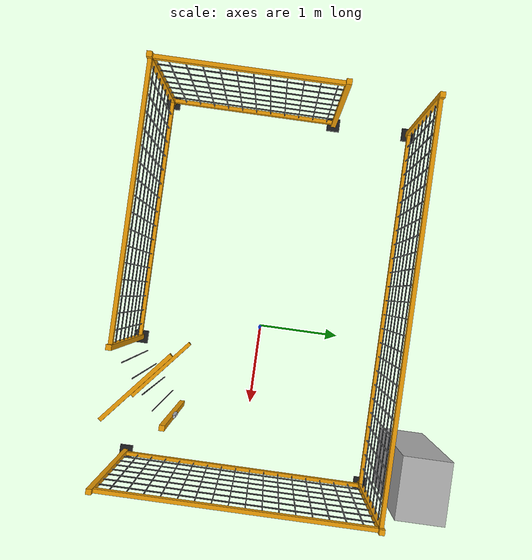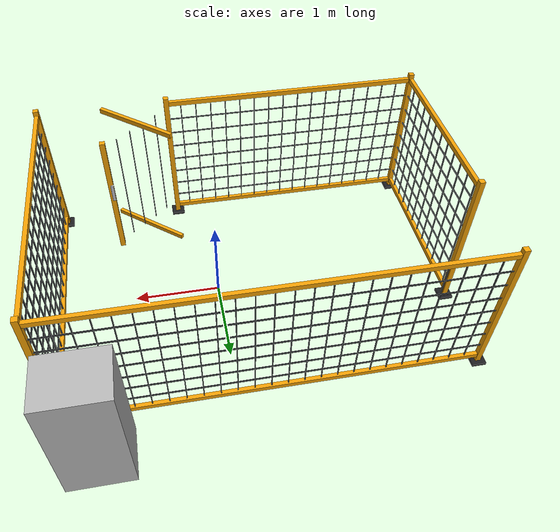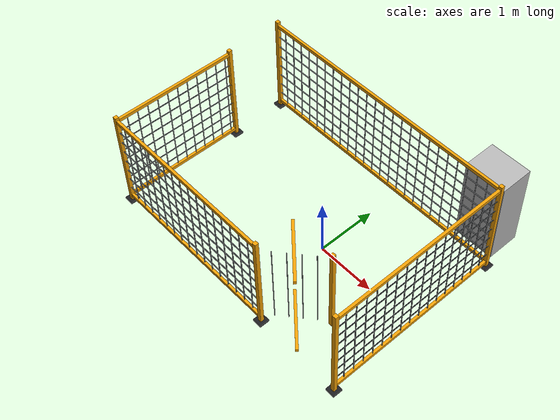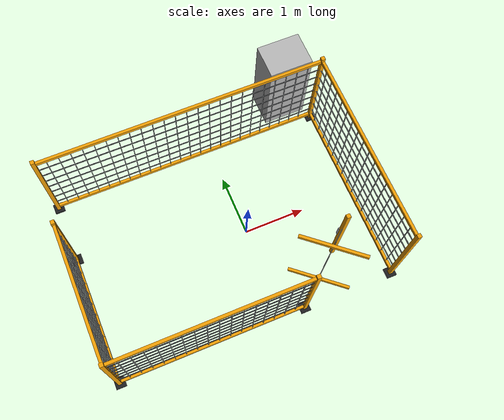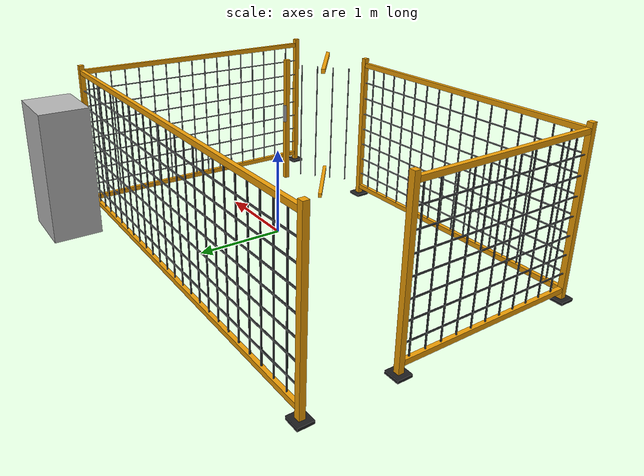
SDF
<sdf version="1.8">
 <world name="ahead_workcell_v3_2_fence">
  <model name="safety_fence">
   <static>true</static>
   <link name="fence_link">
    <collision name="north_panel_collision">
     <pose>-0.425 1.550 0.90 0 0 0</pose>
     <geometry><box><size>4.550 0.025 1.80</size></box></geometry>
    </collision>
    <visual name="north_panel_bottom">
     <pose>-0.425 1.550 0.120 0 0 0</pose>
     <geometry><box><size>4.550 0.045 0.055</size></box></geometry>
     <material><ambient>0.95 0.63 0.02 1</ambient><diffuse>0.95 0.63 0.02 1</diffuse></material>
    </visual>
    <visual name="north_panel_top">
     <pose>-0.425 1.550 1.720 0 0 0</pose>
     <geometry><box><size>4.550 0.045 0.055</size></box></geometry>
     <material><ambient>0.95 0.63 0.02 1</ambient><diffuse>0.95 0.63 0.02 1</diffuse></material>
    </visual>
    <visual name="north_panel_mesh_v_0">
     <pose>-2.520 1.550 0.92 0 0 0</pose>
     <geometry><box><size>0.010 0.014 1.55</size></box></geometry>
     <material><ambient>0.035 0.040 0.045 1</ambient><diffuse>0.035 0.040 0.045 1</diffuse></material>
    </visual>
    <visual name="north_panel_mesh_v_1">
     <pose>-2.340 1.550 0.92 0 0 0</pose>
     <geometry><box><size>0.010 0.014 1.55</size></box></geometry>
     <material><ambient>0.035 0.040 0.045 1</ambient><diffuse>0.035 0.040 0.045 1</diffuse></material>
    </visual>
    <visual name="north_panel_mesh_v_2">
     <pose>-2.160 1.550 0.92 0 0 0</pose>
     <geometry><box><size>0.010 0.014 1.55</size></box></geometry>
     <material><ambient>0.035 0.040 0.045 1</ambient><diffuse>0.035 0.040 0.045 1</diffuse></material>
    </visual>
    <visual name="north_panel_mesh_v_3">
     <pose>-1.980 1.550 0.92 0 0 0</pose>
     <geometry><box><size>0.010 0.014 1.55</size></box></geometry>
     <material><ambient>0.035 0.040 0.045 1</ambient><diffuse>0.035 0.040 0.045 1</diffuse></material>
    </visual>
    <visual name="north_panel_mesh_v_4">
     <pose>-1.800 1.550 0.92 0 0 0</pose>
     <geometry><box><size>0.010 0.014 1.55</size></box></geometry>
     <material><ambient>0.035 0.040 0.045 1</ambient><diffuse>0.035 0.040 0.045 1</diffuse></material>
    </visual>
    <visual name="north_panel_mesh_v_5">
     <pose>-1.620 1.550 0.92 0 0 0</pose>
     <geometry><box><size>0.010 0.014 1.55</size></box></geometry>
     <material><ambient>0.035 0.040 0.045 1</ambient><diffuse>0.035 0.040 0.045 1</diffuse></material>
    </visual>
    <visual name="north_panel_mesh_v_6">
     <pose>-1.440 1.550 0.92 0 0 0</pose>
     <geometry><box><size>0.010 0.014 1.55</size></box></geometry>
     <material><ambient>0.035 0.040 0.045 1</ambient><diffuse>0.035 0.040 0.045 1</diffuse></material>
    </visual>
    <visual name="north_panel_mesh_v_7">
     <pose>-1.260 1.550 0.92 0 0 0</pose>
     <geometry><box><size>0.010 0.014 1.55</size></box></geometry>
     <material><ambient>0.035 0.040 0.045 1</ambient><diffuse>0.035 0.040 0.045 1</diffuse></material>
    </visual>
    <visual name="north_panel_mesh_v_8">
     <pose>-1.080 1.550 0.92 0 0 0</pose>
     <geometry><box><size>0.010 0.014 1.55</size></box></geometry>
     <material><ambient>0.035 0.040 0.045 1</ambient><diffuse>0.035 0.040 0.045 1</diffuse></material>
    </visual>
    <visual name="north_panel_mesh_v_9">
     <pose>-0.900 1.550 0.92 0 0 0</pose>
     <geometry><box><size>0.010 0.014 1.55</size></box></geometry>
     <material><ambient>0.035 0.040 0.045 1</ambient><diffuse>0.035 0.040 0.045 1</diffuse></material>
    </visual>
    <visual name="north_panel_mesh_v_10">
     <pose>-0.720 1.550 0.92 0 0 0</pose>
     <geometry><box><size>0.010 0.014 1.55</size></box></geometry>
     <material><ambient>0.035 0.040 0.045 1</ambient><diffuse>0.035 0.040 0.045 1</diffuse></material>
    </visual>
    <visual name="north_panel_mesh_v_11">
     <pose>-0.540 1.550 0.92 0 0 0</pose>
     <geometry><box><size>0.010 0.014 1.55</size></box></geometry>
     <material><ambient>0.035 0.040 0.045 1</ambient><diffuse>0.035 0.040 0.045 1</diffuse></material>
    </visual>
    <visual name="north_panel_mesh_v_12">
     <pose>-0.360 1.550 0.92 0 0 0</pose>
     <geometry><box><size>0.010 0.014 1.55</size></box></geometry>
     <material><ambient>0.035 0.040 0.045 1</ambient><diffuse>0.035 0.040 0.045 1</diffuse></material>
    </visual>
    <visual name="north_panel_mesh_v_13">
     <pose>-0.180 1.550 0.92 0 0 0</pose>
     <geometry><box><size>0.010 0.014 1.55</size></box></geometry>
     <material><ambient>0.035 0.040 0.045 1</ambient><diffuse>0.035 0.040 0.045 1</diffuse></material>
    </visual>
    <visual name="north_panel_mesh_v_14">
     <pose>-0.000 1.550 0.92 0 0 0</pose>
     <geometry><box><size>0.010 0.014 1.55</size></box></geometry>
     <material><ambient>0.035 0.040 0.045 1</ambient><diffuse>0.035 0.040 0.045 1</diffuse></material>
    </visual>
    <visual name="north_panel_mesh_v_15">
     <pose>0.180 1.550 0.92 0 0 0</pose>
     <geometry><box><size>0.010 0.014 1.55</size></box></geometry>
     <material><ambient>0.035 0.040 0.045 1</ambient><diffuse>0.035 0.040 0.045 1</diffuse></material>
    </visual>
    <visual name="north_panel_mesh_v_16">
     <pose>0.360 1.550 0.92 0 0 0</pose>
     <geometry><box><size>0.010 0.014 1.55</size></box></geometry>
     <material><ambient>0.035 0.040 0.045 1</ambient><diffuse>0.035 0.040 0.045 1</diffuse></material>
    </visual>
    <visual name="north_panel_mesh_v_17">
     <pose>0.540 1.550 0.92 0 0 0</pose>
     <geometry><box><size>0.010 0.014 1.55</size></box></geometry>
     <material><ambient>0.035 0.040 0.045 1</ambient><diffuse>0.035 0.040 0.045 1</diffuse></material>
    </visual>
    <visual name="north_panel_mesh_v_18">
     <pose>0.720 1.550 0.92 0 0 0</pose>
     <geometry><box><size>0.010 0.014 1.55</size></box></geometry>
     <material><ambient>0.035 0.040 0.045 1</ambient><diffuse>0.035 0.040 0.045 1</diffuse></material>
    </visual>
    <visual name="north_panel_mesh_v_19">
     <pose>0.900 1.550 0.92 0 0 0</pose>
     <geometry><box><size>0.010 0.014 1.55</size></box></geometry>
     <material><ambient>0.035 0.040 0.045 1</ambient><diffuse>0.035 0.040 0.045 1</diffuse></material>
    </visual>
    <visual name="north_panel_mesh_v_20">
     <pose>1.080 1.550 0.92 0 0 0</pose>
     <geometry><box><size>0.010 0.014 1.55</size></box></geometry>
     <material><ambient>0.035 0.040 0.045 1</ambient><diffuse>0.035 0.040 0.045 1</diffuse></material>
    </visual>
    <visual name="north_panel_mesh_v_21">
     <pose>1.260 1.550 0.92 0 0 0</pose>
     <geometry><box><size>0.010 0.014 1.55</size></box></geometry>
     <material><ambient>0.035 0.040 0.045 1</ambient><diffuse>0.035 0.040 0.045 1</diffuse></material>
    </visual>
    <visual name="north_panel_mesh_v_22">
     <pose>1.440 1.550 0.92 0 0 0</pose>
     <geometry><box><size>0.010 0.014 1.55</size></box></geometry>
     <material><ambient>0.035 0.040 0.045 1</ambient><diffuse>0.035 0.040 0.045 1</diffuse></material>
    </visual>
    <visual name="north_panel_mesh_v_23">
     <pose>1.620 1.550 0.92 0 0 0</pose>
     <geometry><box><size>0.010 0.014 1.55</size></box></geometry>
     <material><ambient>0.035 0.040 0.045 1</ambient><diffuse>0.035 0.040 0.045 1</diffuse></material>
    </visual>
    <visual name="north_panel_mesh_h_0">
     <pose>-0.425 1.550 0.300 0 0 0</pose>
     <geometry><box><size>4.550 0.014 0.010</size></box></geometry>
     <material><ambient>0.035 0.040 0.045 1</ambient><diffuse>0.035 0.040 0.045 1</diffuse></material>
    </visual>
    <visual name="north_panel_mesh_h_1">
     <pose>-0.425 1.550 0.500 0 0 0</pose>
     <geometry><box><size>4.550 0.014 0.010</size></box></geometry>
     <material><ambient>0.035 0.040 0.045 1</ambient><diffuse>0.035 0.040 0.045 1</diffuse></material>
    </visual>
    <visual name="north_panel_mesh_h_2">
     <pose>-0.425 1.550 0.700 0 0 0</pose>
     <geometry><box><size>4.550 0.014 0.010</size></box></geometry>
     <material><ambient>0.035 0.040 0.045 1</ambient><diffuse>0.035 0.040 0.045 1</diffuse></material>
    </visual>
    <visual name="north_panel_mesh_h_3">
     <pose>-0.425 1.550 0.900 0 0 0</pose>
     <geometry><box><size>4.550 0.014 0.010</size></box></geometry>
     <material><ambient>0.035 0.040 0.045 1</ambient><diffuse>0.035 0.040 0.045 1</diffuse></material>
    </visual>
    <visual name="north_panel_mesh_h_4">
     <pose>-0.425 1.550 1.100 0 0 0</pose>
     <geometry><box><size>4.550 0.014 0.010</size></box></geometry>
     <material><ambient>0.035 0.040 0.045 1</ambient><diffuse>0.035 0.040 0.045 1</diffuse></material>
    </visual>
    <visual name="north_panel_mesh_h_5">
     <pose>-0.425 1.550 1.300 0 0 0</pose>
     <geometry><box><size>4.550 0.014 0.010</size></box></geometry>
     <material><ambient>0.035 0.040 0.045 1</ambient><diffuse>0.035 0.040 0.045 1</diffuse></material>
    </visual>
    <visual name="north_panel_mesh_h_6">
     <pose>-0.425 1.550 1.500 0 0 0</pose>
     <geometry><box><size>4.550 0.014 0.010</size></box></geometry>
     <material><ambient>0.035 0.040 0.045 1</ambient><diffuse>0.035 0.040 0.045 1</diffuse></material>
    </visual>
    <collision name="east_panel_collision">
     <pose>1.850 0.025 0.90 0 0 0</pose>
     <geometry><box><size>0.025 3.050 1.80</size></box></geometry>
    </collision>
    <visual name="east_panel_bottom">
     <pose>1.850 0.025 0.120 0 0 0</pose>
     <geometry><box><size>0.045 3.050 0.055</size></box></geometry>
     <material><ambient>0.95 0.63 0.02 1</ambient><diffuse>0.95 0.63 0.02 1</diffuse></material>
    </visual>
    <visual name="east_panel_top">
     <pose>1.850 0.025 1.720 0 0 0</pose>
     <geometry><box><size>0.045 3.050 0.055</size></box></geometry>
     <material><ambient>0.95 0.63 0.02 1</ambient><diffuse>0.95 0.63 0.02 1</diffuse></material>
    </visual>
    <visual name="east_panel_mesh_v_0">
     <pose>1.850 -1.320 0.92 0 0 0</pose>
     <geometry><box><size>0.014 0.010 1.55</size></box></geometry>
     <material><ambient>0.035 0.040 0.045 1</ambient><diffuse>0.035 0.040 0.045 1</diffuse></material>
    </visual>
    <visual name="east_panel_mesh_v_1">
     <pose>1.850 -1.140 0.92 0 0 0</pose>
     <geometry><box><size>0.014 0.010 1.55</size></box></geometry>
     <material><ambient>0.035 0.040 0.045 1</ambient><diffuse>0.035 0.040 0.045 1</diffuse></material>
    </visual>
    <visual name="east_panel_mesh_v_2">
     <pose>1.850 -0.960 0.92 0 0 0</pose>
     <geometry><box><size>0.014 0.010 1.55</size></box></geometry>
     <material><ambient>0.035 0.040 0.045 1</ambient><diffuse>0.035 0.040 0.045 1</diffuse></material>
    </visual>
    <visual name="east_panel_mesh_v_3">
     <pose>1.850 -0.780 0.92 0 0 0</pose>
     <geometry><box><size>0.014 0.010 1.55</size></box></geometry>
     <material><ambient>0.035 0.040 0.045 1</ambient><diffuse>0.035 0.040 0.045 1</diffuse></material>
    </visual>
    <visual name="east_panel_mesh_v_4">
     <pose>1.850 -0.600 0.92 0 0 0</pose>
     <geometry><box><size>0.014 0.010 1.55</size></box></geometry>
     <material><ambient>0.035 0.040 0.045 1</ambient><diffuse>0.035 0.040 0.045 1</diffuse></material>
    </visual>
    <visual name="east_panel_mesh_v_5">
     <pose>1.850 -0.420 0.92 0 0 0</pose>
     <geometry><box><size>0.014 0.010 1.55</size></box></geometry>
     <material><ambient>0.035 0.040 0.045 1</ambient><diffuse>0.035 0.040 0.045 1</diffuse></material>
    </visual>
    <visual name="east_panel_mesh_v_6">
     <pose>1.850 -0.240 0.92 0 0 0</pose>
     <geometry><box><size>0.014 0.010 1.55</size></box></geometry>
     <material><ambient>0.035 0.040 0.045 1</ambient><diffuse>0.035 0.040 0.045 1</diffuse></material>
    </visual>
    <visual name="east_panel_mesh_v_7">
     <pose>1.850 -0.060 0.92 0 0 0</pose>
     <geometry><box><size>0.014 0.010 1.55</size></box></geometry>
     <material><ambient>0.035 0.040 0.045 1</ambient><diffuse>0.035 0.040 0.045 1</diffuse></material>
    </visual>
    <visual name="east_panel_mesh_v_8">
     <pose>1.850 0.120 0.92 0 0 0</pose>
     <geometry><box><size>0.014 0.010 1.55</size></box></geometry>
     <material><ambient>0.035 0.040 0.045 1</ambient><diffuse>0.035 0.040 0.045 1</diffuse></material>
    </visual>
    <visual name="east_panel_mesh_v_9">
     <pose>1.850 0.300 0.92 0 0 0</pose>
     <geometry><box><size>0.014 0.010 1.55</size></box></geometry>
     <material><ambient>0.035 0.040 0.045 1</ambient><diffuse>0.035 0.040 0.045 1</diffuse></material>
    </visual>
    <visual name="east_panel_mesh_v_10">
     <pose>1.850 0.480 0.92 0 0 0</pose>
     <geometry><box><size>0.014 0.010 1.55</size></box></geometry>
     <material><ambient>0.035 0.040 0.045 1</ambient><diffuse>0.035 0.040 0.045 1</diffuse></material>
    </visual>
    <visual name="east_panel_mesh_v_11">
     <pose>1.850 0.660 0.92 0 0 0</pose>
     <geometry><box><size>0.014 0.010 1.55</size></box></geometry>
     <material><ambient>0.035 0.040 0.045 1</ambient><diffuse>0.035 0.040 0.045 1</diffuse></material>
    </visual>
    <visual name="east_panel_mesh_v_12">
     <pose>1.850 0.840 0.92 0 0 0</pose>
     <geometry><box><size>0.014 0.010 1.55</size></box></geometry>
     <material><ambient>0.035 0.040 0.045 1</ambient><diffuse>0.035 0.040 0.045 1</diffuse></material>
    </visual>
    <visual name="east_panel_mesh_v_13">
     <pose>1.850 1.020 0.92 0 0 0</pose>
     <geometry><box><size>0.014 0.010 1.55</size></box></geometry>
     <material><ambient>0.035 0.040 0.045 1</ambient><diffuse>0.035 0.040 0.045 1</diffuse></material>
    </visual>
    <visual name="east_panel_mesh_v_14">
     <pose>1.850 1.200 0.92 0 0 0</pose>
     <geometry><box><size>0.014 0.010 1.55</size></box></geometry>
     <material><ambient>0.035 0.040 0.045 1</ambient><diffuse>0.035 0.040 0.045 1</diffuse></material>
    </visual>
    <visual name="east_panel_mesh_v_15">
     <pose>1.850 1.380 0.92 0 0 0</pose>
     <geometry><box><size>0.014 0.010 1.55</size></box></geometry>
     <material><ambient>0.035 0.040 0.045 1</ambient><diffuse>0.035 0.040 0.045 1</diffuse></material>
    </visual>
    <visual name="east_panel_mesh_h_0">
     <pose>1.850 0.025 0.300 0 0 0</pose>
     <geometry><box><size>0.014 3.050 0.010</size></box></geometry>
     <material><ambient>0.035 0.040 0.045 1</ambient><diffuse>0.035 0.040 0.045 1</diffuse></material>
    </visual>
    <visual name="east_panel_mesh_h_1">
     <pose>1.850 0.025 0.500 0 0 0</pose>
     <geometry><box><size>0.014 3.050 0.010</size></box></geometry>
     <material><ambient>0.035 0.040 0.045 1</ambient><diffuse>0.035 0.040 0.045 1</diffuse></material>
    </visual>
    <visual name="east_panel_mesh_h_2">
     <pose>1.850 0.025 0.700 0 0 0</pose>
     <geometry><box><size>0.014 3.050 0.010</size></box></geometry>
     <material><ambient>0.035 0.040 0.045 1</ambient><diffuse>0.035 0.040 0.045 1</diffuse></material>
    </visual>
    <visual name="east_panel_mesh_h_3">
     <pose>1.850 0.025 0.900 0 0 0</pose>
     <geometry><box><size>0.014 3.050 0.010</size></box></geometry>
     <material><ambient>0.035 0.040 0.045 1</ambient><diffuse>0.035 0.040 0.045 1</diffuse></material>
    </visual>
    <visual name="east_panel_mesh_h_4">
     <pose>1.850 0.025 1.100 0 0 0</pose>
     <geometry><box><size>0.014 3.050 0.010</size></box></geometry>
     <material><ambient>0.035 0.040 0.045 1</ambient><diffuse>0.035 0.040 0.045 1</diffuse></material>
    </visual>
    <visual name="east_panel_mesh_h_5">
     <pose>1.850 0.025 1.300 0 0 0</pose>
     <geometry><box><size>0.014 3.050 0.010</size></box></geometry>
     <material><ambient>0.035 0.040 0.045 1</ambient><diffuse>0.035 0.040 0.045 1</diffuse></material>
    </visual>
    <visual name="east_panel_mesh_h_6">
     <pose>1.850 0.025 1.500 0 0 0</pose>
     <geometry><box><size>0.014 3.050 0.010</size></box></geometry>
     <material><ambient>0.035 0.040 0.045 1</ambient><diffuse>0.035 0.040 0.045 1</diffuse></material>
    </visual>
    <collision name="west_lower_panel_collision">
     <pose>-2.700 -0.460 0.90 0 0 0</pose>
     <geometry><box><size>0.025 2.080 1.80</size></box></geometry>
    </collision>
    <visual name="west_lower_panel_bottom">
     <pose>-2.700 -0.460 0.120 0 0 0</pose>
     <geometry><box><size>0.045 2.080 0.055</size></box></geometry>
     <material><ambient>0.95 0.63 0.02 1</ambient><diffuse>0.95 0.63 0.02 1</diffuse></material>
    </visual>
    <visual name="west_lower_panel_top">
     <pose>-2.700 -0.460 1.720 0 0 0</pose>
     <geometry><box><size>0.045 2.080 0.055</size></box></geometry>
     <material><ambient>0.95 0.63 0.02 1</ambient><diffuse>0.95 0.63 0.02 1</diffuse></material>
    </visual>
    <visual name="west_lower_panel_mesh_v_0">
     <pose>-2.700 -1.320 0.92 0 0 0</pose>
     <geometry><box><size>0.014 0.010 1.55</size></box></geometry>
     <material><ambient>0.035 0.040 0.045 1</ambient><diffuse>0.035 0.040 0.045 1</diffuse></material>
    </visual>
    <visual name="west_lower_panel_mesh_v_1">
     <pose>-2.700 -1.140 0.92 0 0 0</pose>
     <geometry><box><size>0.014 0.010 1.55</size></box></geometry>
     <material><ambient>0.035 0.040 0.045 1</ambient><diffuse>0.035 0.040 0.045 1</diffuse></material>
    </visual>
    <visual name="west_lower_panel_mesh_v_2">
     <pose>-2.700 -0.960 0.92 0 0 0</pose>
     <geometry><box><size>0.014 0.010 1.55</size></box></geometry>
     <material><ambient>0.035 0.040 0.045 1</ambient><diffuse>0.035 0.040 0.045 1</diffuse></material>
    </visual>
    <visual name="west_lower_panel_mesh_v_3">
     <pose>-2.700 -0.780 0.92 0 0 0</pose>
     <geometry><box><size>0.014 0.010 1.55</size></box></geometry>
     <material><ambient>0.035 0.040 0.045 1</ambient><diffuse>0.035 0.040 0.045 1</diffuse></material>
    </visual>
    <visual name="west_lower_panel_mesh_v_4">
     <pose>-2.700 -0.600 0.92 0 0 0</pose>
     <geometry><box><size>0.014 0.010 1.55</size></box></geometry>
     <material><ambient>0.035 0.040 0.045 1</ambient><diffuse>0.035 0.040 0.045 1</diffuse></material>
    </visual>
    <visual name="west_lower_panel_mesh_v_5">
     <pose>-2.700 -0.420 0.92 0 0 0</pose>
     <geometry><box><size>0.014 0.010 1.55</size></box></geometry>
     <material><ambient>0.035 0.040 0.045 1</ambient><diffuse>0.035 0.040 0.045 1</diffuse></material>
    </visual>
    <visual name="west_lower_panel_mesh_v_6">
     <pose>-2.700 -0.240 0.92 0 0 0</pose>
     <geometry><box><size>0.014 0.010 1.55</size></box></geometry>
     <material><ambient>0.035 0.040 0.045 1</ambient><diffuse>0.035 0.040 0.045 1</diffuse></material>
    </visual>
    <visual name="west_lower_panel_mesh_v_7">
     <pose>-2.700 -0.060 0.92 0 0 0</pose>
     <geometry><box><size>0.014 0.010 1.55</size></box></geometry>
     <material><ambient>0.035 0.040 0.045 1</ambient><diffuse>0.035 0.040 0.045 1</diffuse></material>
    </visual>
    <visual name="west_lower_panel_mesh_v_8">
     <pose>-2.700 0.120 0.92 0 0 0</pose>
     <geometry><box><size>0.014 0.010 1.55</size></box></geometry>
     <material><ambient>0.035 0.040 0.045 1</ambient><diffuse>0.035 0.040 0.045 1</diffuse></material>
    </visual>
    <visual name="west_lower_panel_mesh_v_9">
     <pose>-2.700 0.300 0.92 0 0 0</pose>
     <geometry><box><size>0.014 0.010 1.55</size></box></geometry>
     <material><ambient>0.035 0.040 0.045 1</ambient><diffuse>0.035 0.040 0.045 1</diffuse></material>
    </visual>
    <visual name="west_lower_panel_mesh_v_10">
     <pose>-2.700 0.480 0.92 0 0 0</pose>
     <geometry><box><size>0.014 0.010 1.55</size></box></geometry>
     <material><ambient>0.035 0.040 0.045 1</ambient><diffuse>0.035 0.040 0.045 1</diffuse></material>
    </visual>
    <visual name="west_lower_panel_mesh_h_0">
     <pose>-2.700 -0.460 0.300 0 0 0</pose>
     <geometry><box><size>0.014 2.080 0.010</size></box></geometry>
     <material><ambient>0.035 0.040 0.045 1</ambient><diffuse>0.035 0.040 0.045 1</diffuse></material>
    </visual>
    <visual name="west_lower_panel_mesh_h_1">
     <pose>-2.700 -0.460 0.500 0 0 0</pose>
     <geometry><box><size>0.014 2.080 0.010</size></box></geometry>
     <material><ambient>0.035 0.040 0.045 1</ambient><diffuse>0.035 0.040 0.045 1</diffuse></material>
    </visual>
    <visual name="west_lower_panel_mesh_h_2">
     <pose>-2.700 -0.460 0.700 0 0 0</pose>
     <geometry><box><size>0.014 2.080 0.010</size></box></geometry>
     <material><ambient>0.035 0.040 0.045 1</ambient><diffuse>0.035 0.040 0.045 1</diffuse></material>
    </visual>
    <visual name="west_lower_panel_mesh_h_3">
     <pose>-2.700 -0.460 0.900 0 0 0</pose>
     <geometry><box><size>0.014 2.080 0.010</size></box></geometry>
     <material><ambient>0.035 0.040 0.045 1</ambient><diffuse>0.035 0.040 0.045 1</diffuse></material>
    </visual>
    <visual name="west_lower_panel_mesh_h_4">
     <pose>-2.700 -0.460 1.100 0 0 0</pose>
     <geometry><box><size>0.014 2.080 0.010</size></box></geometry>
     <material><ambient>0.035 0.040 0.045 1</ambient><diffuse>0.035 0.040 0.045 1</diffuse></material>
    </visual>
    <visual name="west_lower_panel_mesh_h_5">
     <pose>-2.700 -0.460 1.300 0 0 0</pose>
     <geometry><box><size>0.014 2.080 0.010</size></box></geometry>
     <material><ambient>0.035 0.040 0.045 1</ambient><diffuse>0.035 0.040 0.045 1</diffuse></material>
    </visual>
    <visual name="west_lower_panel_mesh_h_6">
     <pose>-2.700 -0.460 1.500 0 0 0</pose>
     <geometry><box><size>0.014 2.080 0.010</size></box></geometry>
     <material><ambient>0.035 0.040 0.045 1</ambient><diffuse>0.035 0.040 0.045 1</diffuse></material>
    </visual>
    <collision name="south_left_panel_collision">
     <pose>-1.175 -1.500 0.90 0 0 0</pose>
     <geometry><box><size>3.050 0.025 1.80</size></box></geometry>
    </collision>
    <visual name="south_left_panel_bottom">
     <pose>-1.175 -1.500 0.120 0 0 0</pose>
     <geometry><box><size>3.050 0.045 0.055</size></box></geometry>
     <material><ambient>0.95 0.63 0.02 1</ambient><diffuse>0.95 0.63 0.02 1</diffuse></material>
    </visual>
    <visual name="south_left_panel_top">
     <pose>-1.175 -1.500 1.720 0 0 0</pose>
     <geometry><box><size>3.050 0.045 0.055</size></box></geometry>
     <material><ambient>0.95 0.63 0.02 1</ambient><diffuse>0.95 0.63 0.02 1</diffuse></material>
    </visual>
    <visual name="south_left_panel_mesh_v_0">
     <pose>-2.520 -1.500 0.92 0 0 0</pose>
     <geometry><box><size>0.010 0.014 1.55</size></box></geometry>
     <material><ambient>0.035 0.040 0.045 1</ambient><diffuse>0.035 0.040 0.045 1</diffuse></material>
    </visual>
    <visual name="south_left_panel_mesh_v_1">
     <pose>-2.340 -1.500 0.92 0 0 0</pose>
     <geometry><box><size>0.010 0.014 1.55</size></box></geometry>
     <material><ambient>0.035 0.040 0.045 1</ambient><diffuse>0.035 0.040 0.045 1</diffuse></material>
    </visual>
    <visual name="south_left_panel_mesh_v_2">
     <pose>-2.160 -1.500 0.92 0 0 0</pose>
     <geometry><box><size>0.010 0.014 1.55</size></box></geometry>
     <material><ambient>0.035 0.040 0.045 1</ambient><diffuse>0.035 0.040 0.045 1</diffuse></material>
    </visual>
    <visual name="south_left_panel_mesh_v_3">
     <pose>-1.980 -1.500 0.92 0 0 0</pose>
     <geometry><box><size>0.010 0.014 1.55</size></box></geometry>
     <material><ambient>0.035 0.040 0.045 1</ambient><diffuse>0.035 0.040 0.045 1</diffuse></material>
    </visual>
    <visual name="south_left_panel_mesh_v_4">
     <pose>-1.800 -1.500 0.92 0 0 0</pose>
     <geometry><box><size>0.010 0.014 1.55</size></box></geometry>
     <material><ambient>0.035 0.040 0.045 1</ambient><diffuse>0.035 0.040 0.045 1</diffuse></material>
    </visual>
    <visual name="south_left_panel_mesh_v_5">
     <pose>-1.620 -1.500 0.92 0 0 0</pose>
     <geometry><box><size>0.010 0.014 1.55</size></box></geometry>
     <material><ambient>0.035 0.040 0.045 1</ambient><diffuse>0.035 0.040 0.045 1</diffuse></material>
    </visual>
    <visual name="south_left_panel_mesh_v_6">
     <pose>-1.440 -1.500 0.92 0 0 0</pose>
     <geometry><box><size>0.010 0.014 1.55</size></box></geometry>
     <material><ambient>0.035 0.040 0.045 1</ambient><diffuse>0.035 0.040 0.045 1</diffuse></material>
    </visual>
    <visual name="south_left_panel_mesh_v_7">
     <pose>-1.260 -1.500 0.92 0 0 0</pose>
     <geometry><box><size>0.010 0.014 1.55</size></box></geometry>
     <material><ambient>0.035 0.040 0.045 1</ambient><diffuse>0.035 0.040 0.045 1</diffuse></material>
    </visual>
    <visual name="south_left_panel_mesh_v_8">
     <pose>-1.080 -1.500 0.92 0 0 0</pose>
     <geometry><box><size>0.010 0.014 1.55</size></box></geometry>
     <material><ambient>0.035 0.040 0.045 1</ambient><diffuse>0.035 0.040 0.045 1</diffuse></material>
    </visual>
    <visual name="south_left_panel_mesh_v_9">
     <pose>-0.900 -1.500 0.92 0 0 0</pose>
     <geometry><box><size>0.010 0.014 1.55</size></box></geometry>
     <material><ambient>0.035 0.040 0.045 1</ambient><diffuse>0.035 0.040 0.045 1</diffuse></material>
    </visual>
    <visual name="south_left_panel_mesh_v_10">
     <pose>-0.720 -1.500 0.92 0 0 0</pose>
     <geometry><box><size>0.010 0.014 1.55</size></box></geometry>
     <material><ambient>0.035 0.040 0.045 1</ambient><diffuse>0.035 0.040 0.045 1</diffuse></material>
    </visual>
    <visual name="south_left_panel_mesh_v_11">
     <pose>-0.540 -1.500 0.92 0 0 0</pose>
     <geometry><box><size>0.010 0.014 1.55</size></box></geometry>
     <material><ambient>0.035 0.040 0.045 1</ambient><diffuse>0.035 0.040 0.045 1</diffuse></material>
    </visual>
    <visual name="south_left_panel_mesh_v_12">
     <pose>-0.360 -1.500 0.92 0 0 0</pose>
     <geometry><box><size>0.010 0.014 1.55</size></box></geometry>
     <material><ambient>0.035 0.040 0.045 1</ambient><diffuse>0.035 0.040 0.045 1</diffuse></material>
    </visual>
    <visual name="south_left_panel_mesh_v_13">
     <pose>-0.180 -1.500 0.92 0 0 0</pose>
     <geometry><box><size>0.010 0.014 1.55</size></box></geometry>
     <material><ambient>0.035 0.040 0.045 1</ambient><diffuse>0.035 0.040 0.045 1</diffuse></material>
    </visual>
    <visual name="south_left_panel_mesh_v_14">
     <pose>-0.000 -1.500 0.92 0 0 0</pose>
     <geometry><box><size>0.010 0.014 1.55</size></box></geometry>
     <material><ambient>0.035 0.040 0.045 1</ambient><diffuse>0.035 0.040 0.045 1</diffuse></material>
    </visual>
    <visual name="south_left_panel_mesh_v_15">
     <pose>0.180 -1.500 0.92 0 0 0</pose>
     <geometry><box><size>0.010 0.014 1.55</size></box></geometry>
     <material><ambient>0.035 0.040 0.045 1</ambient><diffuse>0.035 0.040 0.045 1</diffuse></material>
    </visual>
    <visual name="south_left_panel_mesh_h_0">
     <pose>-1.175 -1.500 0.300 0 0 0</pose>
     <geometry><box><size>3.050 0.014 0.010</size></box></geometry>
     <material><ambient>0.035 0.040 0.045 1</ambient><diffuse>0.035 0.040 0.045 1</diffuse></material>
    </visual>
    <visual name="south_left_panel_mesh_h_1">
     <pose>-1.175 -1.500 0.500 0 0 0</pose>
     <geometry><box><size>3.050 0.014 0.010</size></box></geometry>
     <material><ambient>0.035 0.040 0.045 1</ambient><diffuse>0.035 0.040 0.045 1</diffuse></material>
    </visual>
    <visual name="south_left_panel_mesh_h_2">
     <pose>-1.175 -1.500 0.700 0 0 0</pose>
     <geometry><box><size>3.050 0.014 0.010</size></box></geometry>
     <material><ambient>0.035 0.040 0.045 1</ambient><diffuse>0.035 0.040 0.045 1</diffuse></material>
    </visual>
    <visual name="south_left_panel_mesh_h_3">
     <pose>-1.175 -1.500 0.900 0 0 0</pose>
     <geometry><box><size>3.050 0.014 0.010</size></box></geometry>
     <material><ambient>0.035 0.040 0.045 1</ambient><diffuse>0.035 0.040 0.045 1</diffuse></material>
    </visual>
    <visual name="south_left_panel_mesh_h_4">
     <pose>-1.175 -1.500 1.100 0 0 0</pose>
     <geometry><box><size>3.050 0.014 0.010</size></box></geometry>
     <material><ambient>0.035 0.040 0.045 1</ambient><diffuse>0.035 0.040 0.045 1</diffuse></material>
    </visual>
    <visual name="south_left_panel_mesh_h_5">
     <pose>-1.175 -1.500 1.300 0 0 0</pose>
     <geometry><box><size>3.050 0.014 0.010</size></box></geometry>
     <material><ambient>0.035 0.040 0.045 1</ambient><diffuse>0.035 0.040 0.045 1</diffuse></material>
    </visual>
    <visual name="south_left_panel_mesh_h_6">
     <pose>-1.175 -1.500 1.500 0 0 0</pose>
     <geometry><box><size>3.050 0.014 0.010</size></box></geometry>
     <material><ambient>0.035 0.040 0.045 1</ambient><diffuse>0.035 0.040 0.045 1</diffuse></material>
    </visual>
    <visual name="post_0_post">
     <pose>-2.700 -1.500 0.90 0 0 0</pose>
     <geometry><box><size>0.060 0.060 1.80</size></box></geometry>
     <material><ambient>0.95 0.63 0.02 1</ambient><diffuse>0.95 0.63 0.02 1</diffuse></material>
    </visual>
    <visual name="post_0_plate">
     <pose>-2.700 -1.500 0.015 0 0 0</pose>
     <geometry><box><size>0.16 0.16 0.03</size></box></geometry>
     <material><ambient>0.12 0.12 0.13 1</ambient><diffuse>0.12 0.12 0.13 1</diffuse></material>
    </visual>
    <visual name="post_1_post">
     <pose>-2.700 0.580 0.90 0 0 0</pose>
     <geometry><box><size>0.060 0.060 1.80</size></box></geometry>
     <material><ambient>0.95 0.63 0.02 1</ambient><diffuse>0.95 0.63 0.02 1</diffuse></material>
    </visual>
    <visual name="post_1_plate">
     <pose>-2.700 0.580 0.015 0 0 0</pose>
     <geometry><box><size>0.16 0.16 0.03</size></box></geometry>
     <material><ambient>0.12 0.12 0.13 1</ambient><diffuse>0.12 0.12 0.13 1</diffuse></material>
    </visual>
    <visual name="post_2_post">
     <pose>-2.700 1.550 0.90 0 0 0</pose>
     <geometry><box><size>0.060 0.060 1.80</size></box></geometry>
     <material><ambient>0.95 0.63 0.02 1</ambient><diffuse>0.95 0.63 0.02 1</diffuse></material>
    </visual>
    <visual name="post_2_plate">
     <pose>-2.700 1.550 0.015 0 0 0</pose>
     <geometry><box><size>0.16 0.16 0.03</size></box></geometry>
     <material><ambient>0.12 0.12 0.13 1</ambient><diffuse>0.12 0.12 0.13 1</diffuse></material>
    </visual>
    <visual name="post_3_post">
     <pose>1.850 1.550 0.90 0 0 0</pose>
     <geometry><box><size>0.060 0.060 1.80</size></box></geometry>
     <material><ambient>0.95 0.63 0.02 1</ambient><diffuse>0.95 0.63 0.02 1</diffuse></material>
    </visual>
    <visual name="post_3_plate">
     <pose>1.850 1.550 0.015 0 0 0</pose>
     <geometry><box><size>0.16 0.16 0.03</size></box></geometry>
     <material><ambient>0.12 0.12 0.13 1</ambient><diffuse>0.12 0.12 0.13 1</diffuse></material>
    </visual>
    <visual name="post_4_post">
     <pose>1.850 -1.500 0.90 0 0 0</pose>
     <geometry><box><size>0.060 0.060 1.80</size></box></geometry>
     <material><ambient>0.95 0.63 0.02 1</ambient><diffuse>0.95 0.63 0.02 1</diffuse></material>
    </visual>
    <visual name="post_4_plate">
     <pose>1.850 -1.500 0.015 0 0 0</pose>
     <geometry><box><size>0.16 0.16 0.03</size></box></geometry>
     <material><ambient>0.12 0.12 0.13 1</ambient><diffuse>0.12 0.12 0.13 1</diffuse></material>
    </visual>
    <visual name="post_5_post">
     <pose>0.350 -1.500 0.90 0 0 0</pose>
     <geometry><box><size>0.060 0.060 1.80</size></box></geometry>
     <material><ambient>0.95 0.63 0.02 1</ambient><diffuse>0.95 0.63 0.02 1</diffuse></material>
    </visual>
    <visual name="post_5_plate">
     <pose>0.350 -1.500 0.015 0 0 0</pose>
     <geometry><box><size>0.16 0.16 0.03</size></box></geometry>
     <material><ambient>0.12 0.12 0.13 1</ambient><diffuse>0.12 0.12 0.13 1</diffuse></material>
    </visual>
    <visual name="gate_pivot_post">
     <pose>0.350 -1.500 0.90 0 0 0</pose>
     <geometry><box><size>0.060 0.060 1.80</size></box></geometry>
     <material><ambient>0.95 0.63 0.02 1</ambient><diffuse>0.95 0.63 0.02 1</diffuse></material>
    </visual>
    <visual name="gate_pivot_plate">
     <pose>0.350 -1.500 0.015 0 0 0</pose>
     <geometry><box><size>0.16 0.16 0.03</size></box></geometry>
     <material><ambient>0.12 0.12 0.13 1</ambient><diffuse>0.12 0.12 0.13 1</diffuse></material>
    </visual>
    <visual name="gate_top">
     <pose>0.73 -1.18 1.72 0 0 -0.70</pose>
     <geometry><box><size>1.00 0.045 0.055</size></box></geometry>
     <material><ambient>0.95 0.63 0.02 1</ambient><diffuse>0.95 0.63 0.02 1</diffuse></material>
    </visual>
    <visual name="gate_bottom">
     <pose>0.73 -1.18 0.12 0 0 -0.70</pose>
     <geometry><box><size>1.00 0.045 0.055</size></box></geometry>
     <material><ambient>0.95 0.63 0.02 1</ambient><diffuse>0.95 0.63 0.02 1</diffuse></material>
    </visual>
    <visual name="gate_end">
     <pose>1.115 -0.855 0.92 0 0 0</pose>
     <geometry><box><size>0.060 0.060 1.60</size></box></geometry>
     <material><ambient>0.95 0.63 0.02 1</ambient><diffuse>0.95 0.63 0.02 1</diffuse></material>
    </visual>
    <visual name="gate_mesh_1">
     <pose>0.503 -1.371 0.92 0 0 0</pose>
     <geometry><box><size>0.010 0.010 1.48</size></box></geometry>
     <material><ambient>0.035 0.040 0.045 1</ambient><diffuse>0.035 0.040 0.045 1</diffuse></material>
    </visual>
    <visual name="gate_mesh_2">
     <pose>0.656 -1.242 0.92 0 0 0</pose>
     <geometry><box><size>0.010 0.010 1.48</size></box></geometry>
     <material><ambient>0.035 0.040 0.045 1</ambient><diffuse>0.035 0.040 0.045 1</diffuse></material>
    </visual>
    <visual name="gate_mesh_3">
     <pose>0.809 -1.113 0.92 0 0 0</pose>
     <geometry><box><size>0.010 0.010 1.48</size></box></geometry>
     <material><ambient>0.035 0.040 0.045 1</ambient><diffuse>0.035 0.040 0.045 1</diffuse></material>
    </visual>
    <visual name="gate_mesh_4">
     <pose>0.962 -0.984 0.92 0 0 0</pose>
     <geometry><box><size>0.010 0.010 1.48</size></box></geometry>
     <material><ambient>0.035 0.040 0.045 1</ambient><diffuse>0.035 0.040 0.045 1</diffuse></material>
    </visual>
    <visual name="gate_handle">
     <pose>1.10 -0.82 1.02 0 0 0</pose>
     <geometry><box><size>0.035 0.035 0.22</size></box></geometry>
     <material><ambient>0.75 0.75 0.78 1</ambient><diffuse>0.75 0.75 0.78 1</diffuse></material>
    </visual>
   </link>
  </model>
  <model name="controller_cabinet">
   <static>true</static>
   <pose>1.45 2.00 0 0 0 0</pose>
   <link name="cabinet_link">
    <collision name="collision">
     <pose>0 0 0.75 0 0 0</pose>
     <geometry><box><size>0.70 0.55 1.50</size></box></geometry>
    </collision>
    <visual name="visual">
     <pose>0 0 0.75 0 0 0</pose>
     <geometry><box><size>0.70 0.55 1.50</size></box></geometry>
    </visual>
   </link>
  </model>
 </world>
</sdf>
